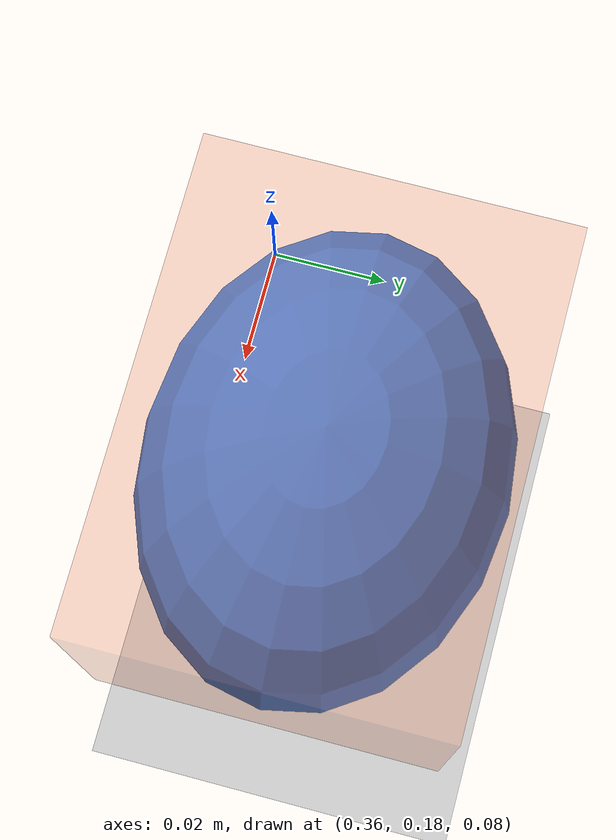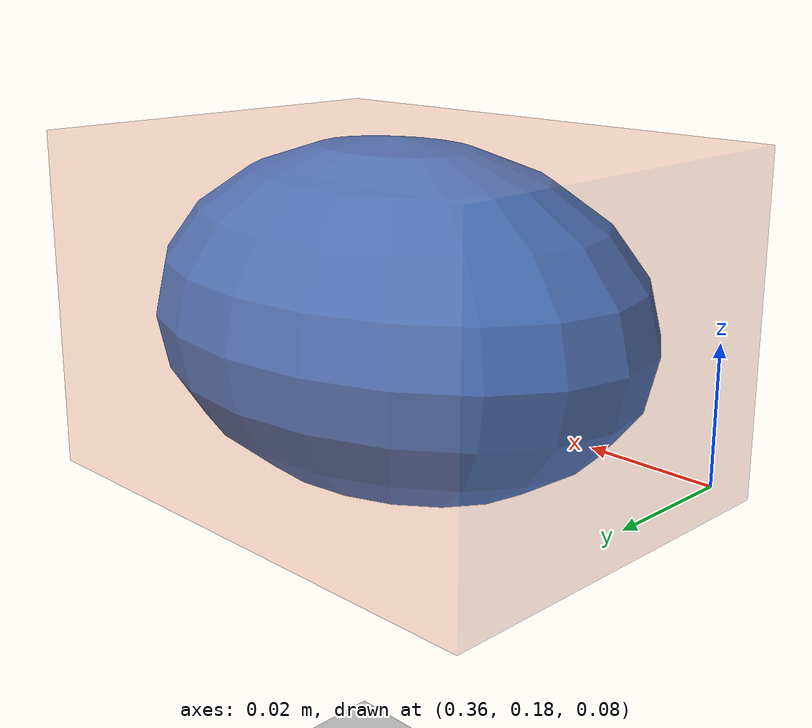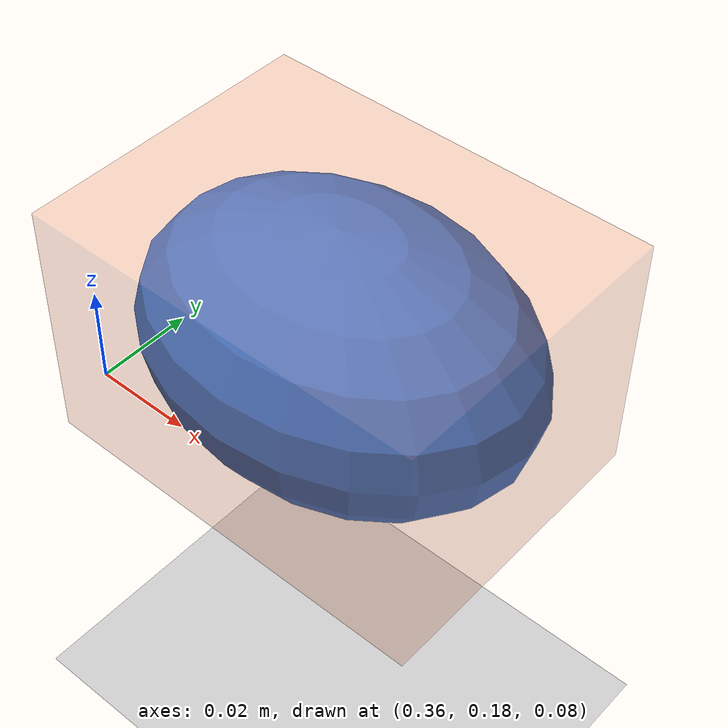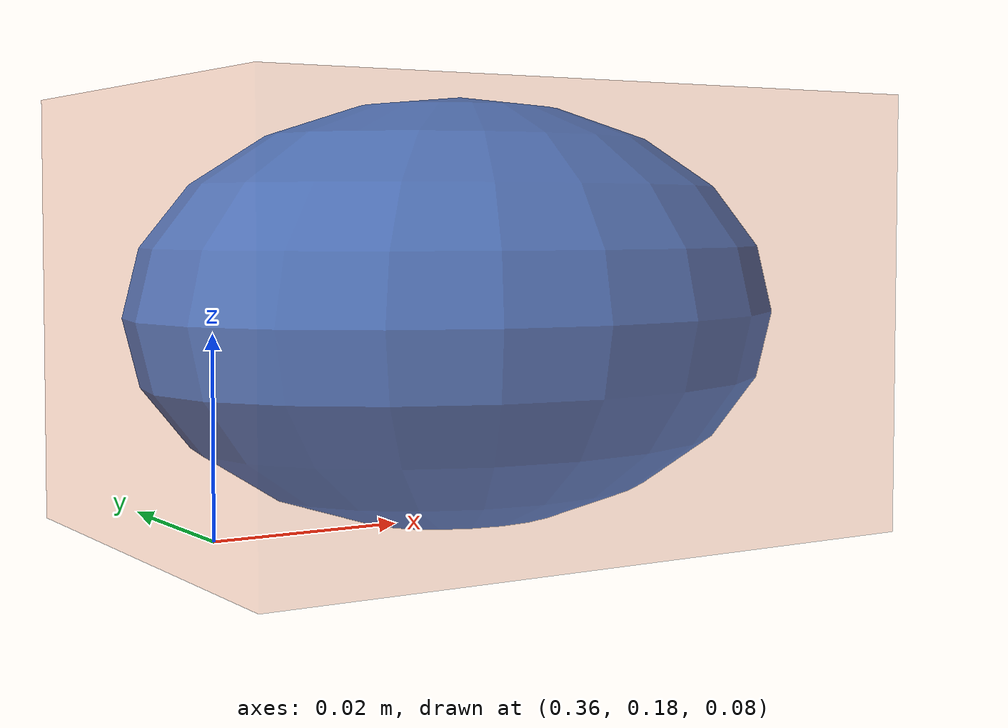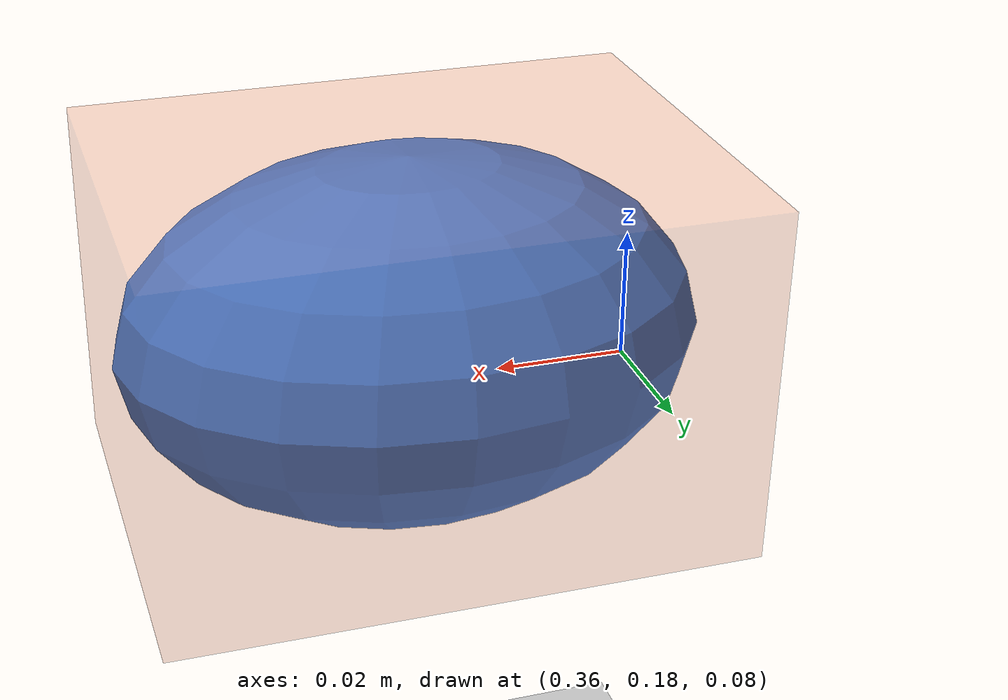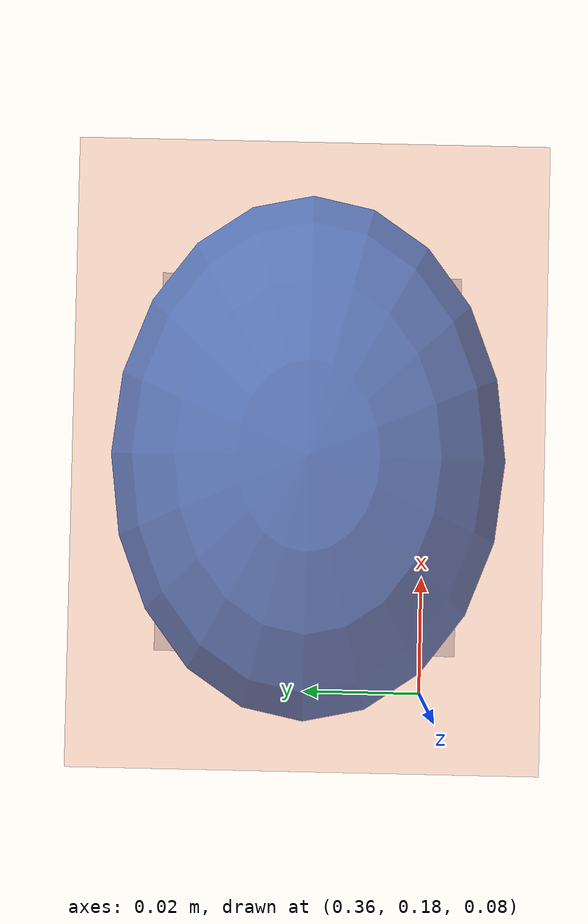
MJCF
<mujoco model="tracked_object_pose_example">
  <!-- Illustrative model only. XML parsing does not validate MuJoCo semantics. -->
  <compiler angle="radian"/>
  <option gravity="0 0 -9.81" timestep="0.002"/>
  <worldbody>
    <light pos="0 0 2"/>
    <geom name="floor" type="plane" size="2 2 0.1" rgba="0.8 0.8 0.8 1"/>
    <!-- Mocap prescribes pose; this body is not a freely falling object. -->
    <body name="tracked_object" mocap="true" pos="0.4 0.2 0.1">
      <!-- Detailed appearance and simple collision shape have different roles. -->
      <geom name="object_visual" type="ellipsoid" size="0.04 0.03 0.025"
            rgba="0.2 0.5 0.9 1" contype="0" conaffinity="0" mass="0"/>
      <geom name="object_collision" type="box" size="0.04 0.03 0.025"
            rgba="0.9 0.4 0.2 0.25" contype="1" conaffinity="1" mass="0.1"/>
      <site name="object_origin" size="0.005" rgba="1 0 0 1"/>
    </body>
  </worldbody>
</mujoco>
